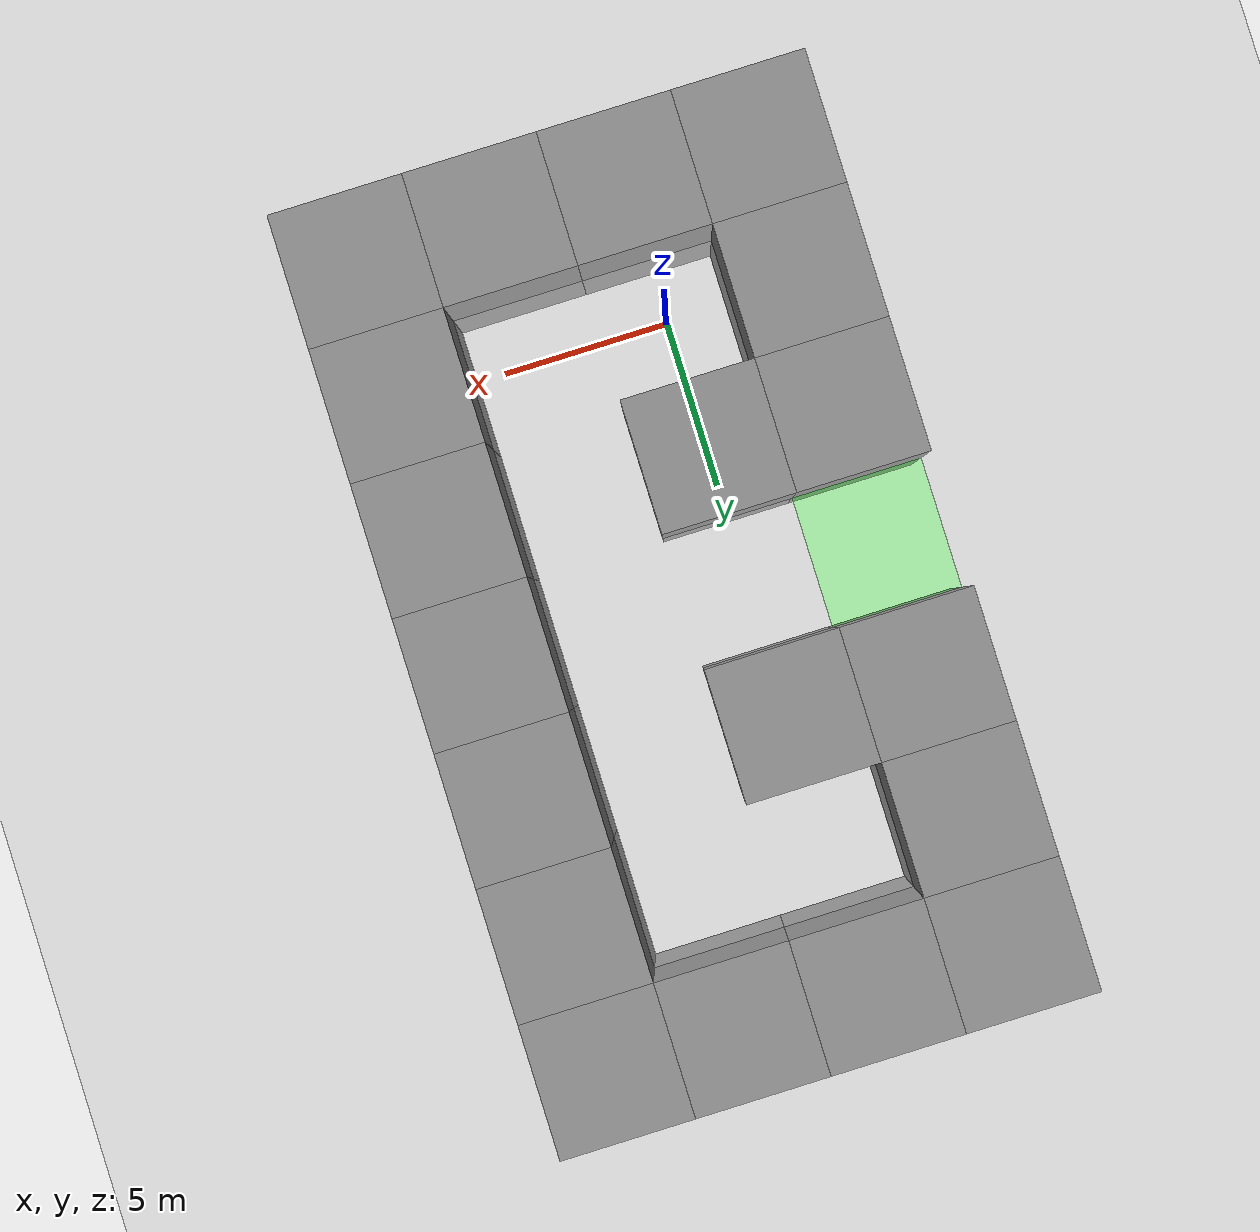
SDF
<?xml version="1.0" ?>
<sdf version="1.6">
  <world name="maze_world">
    <include>
      <uri>model://ground_plane</uri>
    </include>
    <include>
      <uri>model://sun</uri>
    </include>

    <!-- MAZE START -->
<include>
	<uri>model://unit_box</uri>
	<pose>-4 -4 0 0 0 0</pose>
</include>
<include>
	<uri>model://unit_box</uri>
	<pose>-4 0 0 0 0 0</pose>
</include>
<include>
	<uri>model://unit_box</uri>
	<pose>-4 4 0 0 0 0</pose>
</include>
<include>
	<uri>model://ending_tile</uri>
	<pose>-4 8 0 0 0 0</pose>
</include>
<include>
	<uri>model://unit_box</uri>
	<pose>-4 12 0 0 0 0</pose>
</include>
<include>
	<uri>model://unit_box</uri>
	<pose>-4 16 0 0 0 0</pose>
</include>
<include>
	<uri>model://unit_box</uri>
	<pose>-4 20 0 0 0 0</pose>
</include>
<include>
	<uri>model://unit_box</uri>
	<pose>0 -4 0 0 0 0</pose>
</include>
<include>
	<uri>model://unit_box</uri>
	<pose>0 4 0 0 0 0</pose>
</include>
<include>
	<uri>model://unit_box</uri>
	<pose>0 12 0 0 0 0</pose>
</include>
<include>
	<uri>model://unit_box</uri>
	<pose>0 20 0 0 0 0</pose>
</include>
<include>
	<uri>model://unit_box</uri>
	<pose>4 -4 0 0 0 0</pose>
</include>
<include>
	<uri>model://unit_box</uri>
	<pose>4 20 0 0 0 0</pose>
</include>
<include>
	<uri>model://unit_box</uri>
	<pose>8 -4 0 0 0 0</pose>
</include>
<include>
	<uri>model://unit_box</uri>
	<pose>8 0 0 0 0 0</pose>
</include>
<include>
	<uri>model://unit_box</uri>
	<pose>8 4 0 0 0 0</pose>
</include>
<include>
	<uri>model://unit_box</uri>
	<pose>8 8 0 0 0 0</pose>
</include>
<include>
	<uri>model://unit_box</uri>
	<pose>8 12 0 0 0 0</pose>
</include>
<include>
	<uri>model://unit_box</uri>
	<pose>8 16 0 0 0 0</pose>
</include>
<include>
	<uri>model://unit_box</uri>
	<pose>8 20 0 0 0 0</pose>
</include>
		<!-- MAZE END -->
	</world>
</sdf>

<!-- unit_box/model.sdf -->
<sdf version='1.6'>
  <model name='unit_box'>
    <pose frame=''>0 0 0 0 -0 0</pose>
    <link name='link'>
      <inertial>
        <mass>1</mass>
        <inertia>
          <ixx>0.166667</ixx>
          <ixy>0</ixy>
          <ixz>0</ixz>
          <iyy>0.166667</iyy>
          <iyz>0</iyz>
          <izz>0.166667</izz>
        </inertia>
      </inertial>
      <collision name='collision'>
        <geometry>
          <box>
            <size>4 4 4</size>
          </box>
        </geometry>
        <max_contacts>10</max_contacts>
        <surface>
          <contact>
            <ode/>
          </contact>
          <bounce/>
          <friction>
            <torsional>
              <ode/>
            </torsional>
            <ode/>
          </friction>
        </surface>
      </collision>
      <visual name='visual'>
        <geometry>
          <box>
            <size>4 4 4</size>
          </box>
        </geometry>
        <material>
          <script>
            <name>Gazebo/Grey</name>
            <uri>file://media/materials/scripts/gazebo.material</uri>
          </script>
        </material>
      </visual>
      <self_collide>0</self_collide>
      <kinematic>0</kinematic>
      <gravity>1</gravity>
    </link>
  </model>
</sdf>

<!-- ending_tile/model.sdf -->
<sdf version='1.6'>
  <model name='ending_tile'>
    <link name='link'>
      <pose frame=''>0 0 0 0 -0 0</pose>
      <inertial>
        <mass>1</mass>
        <inertia>
          <ixx>0.166667</ixx>
          <ixy>0</ixy>
          <ixz>0</ixz>
          <iyy>0.166667</iyy>
          <iyz>0</iyz>
          <izz>0.166667</izz>
        </inertia>
        <pose frame=''>0 0 0 0 -0 0</pose>
      </inertial>
      <self_collide>0</self_collide>
      <kinematic>0</kinematic>
      <gravity>0</gravity>
      <visual name='visual'>
        <geometry>
          <box>
            <size>4 4 0.0001</size>
          </box>
        </geometry>
        <material>
          <script>
            <name>Gazebo/Grey</name>
            <uri>file://media/materials/scripts/gazebo.material</uri>
          </script>
          <ambient>0 1 0 0.3</ambient>
          <diffuse>0.7 0.7 0.7 1</diffuse>
          <specular>0.01 0.01 0.01 1</specular>
          <emissive>0 0 0 1</emissive>
          <shader type='vertex'>
            <normal_map>__default__</normal_map>
          </shader>
        </material>
        <pose frame=''>0 0 0 0 -0 0</pose>
        <cast_shadows>1</cast_shadows>
        <transparency>0</transparency>
      </visual>
    </link>
    <static>0</static>
    <allow_auto_disable>1</allow_auto_disable>
  </model>
</sdf>
